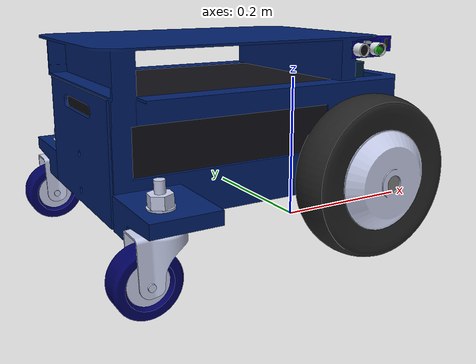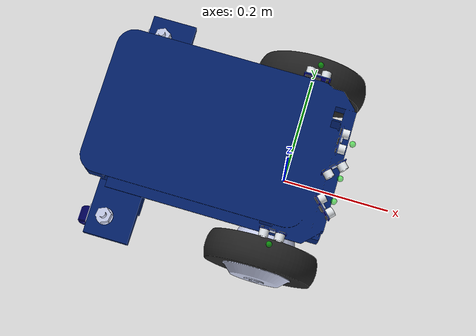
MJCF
<mujoco model="magni">
    <compiler angle="radian" meshdir="./assets" />
    <option timestep="0.002" integrator="implicitfast" />

    <default>
        <default class="visual">
            <geom type="mesh" contype="0" conaffinity="0" group="2" density="0" />
        </default>
        <default class="collision">
            <geom group="3" />
        </default>
        <default class="wheel">
            <joint type="hinge" axis="1 0 0" damping="0.1"
                armature="0.005" frictionloss="0.05" />
        </default>
    </default>

    <asset>
        <material name="chassis_light"    rgba="0.7922 0.8196 0.9333 1.0000" />
        <material name="accent_navy"      rgba="0.0000 0.0000 0.3765 1.0000" />
        <material name="hubcap_dark"      rgba="0.1373 0.1373 0.1373 1.0000" />
        <material name="axlecap_grey"     rgba="0.5020 0.5020 0.5020 1.0000" />
        <material name="body_black"       rgba="0.0588 0.0588 0.0863 1.0000" />
        <material name="body_blue"        rgba="0.0039 0.1216 0.4196 1.0000" />
        <material name="body_blue_dark"   rgba="0.0039 0.1294 0.2275 1.0000" />
        <material name="sonar_pcb"        rgba="0.0000 0.0000 0.5020 1.0000" />
        <material name="sonar_housing"    rgba="0.6667 0.6980 0.7686 1.0000" />
        <material name="sonar_led"        rgba="0.1373 0.2941 0.7490 1.0000" />
        <material name="sonar_chip"       rgba="0.0706 0.0706 0.0706 1.0000" />
        <material name="sonar_transducer" rgba="0.8941 0.9137 0.9294 1.0000" />

        <mesh name="caster_wheel__0" file="parts/caster_wheel__0.stl" inertia="shell" />
        <mesh name="caster_wheel__1" file="parts/caster_wheel__1.stl" inertia="shell" />
        <mesh name="caster_wheel__2" file="parts/caster_wheel__2.stl" inertia="shell" />
        <mesh name="caster_wheel__3" file="parts/caster_wheel__3.stl" inertia="shell" />
        <mesh name="caster_wheel__4" file="parts/caster_wheel__4.stl" inertia="shell" />
        <mesh name="caster_wheel__5" file="parts/caster_wheel__5.stl" inertia="shell" />
        <mesh name="front_wheel__0" file="parts/front_wheel__0.stl" inertia="shell" />
        <mesh name="front_wheel__1" file="parts/front_wheel__1.stl" inertia="shell" />
        <mesh name="front_wheel__2" file="parts/front_wheel__2.stl" inertia="shell" />
        <mesh name="magni_body__0" file="parts/magni_body__0.stl" inertia="shell" />
        <mesh name="magni_body__1" file="parts/magni_body__1.stl" inertia="shell" />
        <mesh name="magni_body__2" file="parts/magni_body__2.stl" inertia="shell" />
        <mesh name="magni_body__3" file="parts/magni_body__3.stl" inertia="shell" />
        <mesh name="magni_body__4" file="parts/magni_body__4.stl" inertia="shell" />
        <mesh name="sonar_hc-sr04__0" file="parts/sonar_hc-sr04__0.stl" inertia="shell" />
        <mesh name="sonar_hc-sr04__1" file="parts/sonar_hc-sr04__1.stl" inertia="shell" />
        <mesh name="sonar_hc-sr04__2" file="parts/sonar_hc-sr04__2.stl" inertia="shell" />
        <mesh name="sonar_hc-sr04__3" file="parts/sonar_hc-sr04__3.stl" inertia="shell" />
        <mesh name="sonar_hc-sr04__4" file="parts/sonar_hc-sr04__4.stl" inertia="shell" />
    </asset>

    <worldbody>
        <body name="base" pos="0 0 0.1">
            <freejoint />
            <inertial pos="-0.15 0 0.03" quat="0 0.707107 0 0.707107" mass="10"
                diaginertia="0.172704 0.150753 0.0594508" />
            <site name="imu" pos="0 0 0" size="0.01" rgba="1 0 0 0.5" />
            <body name="body" pos="-0.11 0 -0.029" quat="1 0 0 0">
                <inertial pos="-0.03 0 0.11" mass="1.0"
                    diaginertia="0.02 0.025 0.03" />
                <geom class="collision" type="box" pos="-0.03 0 0.11"
                    size="0.2 0.11 0.05" />
                <geom class="visual" mesh="magni_body__0" material="body_black" />
                <geom class="visual" mesh="magni_body__1" material="body_blue" />
                <geom class="visual" mesh="magni_body__2" material="body_blue" />
                <geom class="visual" mesh="magni_body__3" material="body_blue_dark" />
                <geom class="visual" mesh="magni_body__4" material="body_blue" />
            </body>
            <body name="left_caster_yoke" pos="-0.279 0.17 -0.01" quat="0 0 0 1">
                <inertial pos="0 0 -0.025" mass="0.15"
                    diaginertia="1e-4 1e-4 1e-4" />
                <joint name="left_caster_swivel" type="hinge" axis="0 0 1"
                    damping="0.005" />
                <geom class="visual" mesh="caster_wheel__0" material="chassis_light" />
                <geom class="visual" mesh="caster_wheel__1" material="chassis_light" />
                <geom class="visual" mesh="caster_wheel__2" material="chassis_light" />
                <geom class="visual" mesh="caster_wheel__3" material="chassis_light" />
                <geom class="visual" mesh="caster_wheel__4" material="accent_navy" />
                <geom class="visual" mesh="caster_wheel__5" material="chassis_light" />
                <body name="left_caster_wheel" pos="0.025 0 -0.05">
                    <inertial pos="0 0 0" mass="0.05"
                        diaginertia="3e-5 3e-5 3e-5" />
                    <joint name="left_caster_roll" type="hinge" axis="0 1 0"
                        damping="0.001" />
                    <geom class="collision" type="sphere" size="0.04"
                        friction="1 0.005 0.0001" />
                </body>
            </body>
            <body name="right_caster_yoke" pos="-0.279 -0.17 -0.01" quat="0 0 0 1">
                <inertial pos="0 0 -0.025" mass="0.15"
                    diaginertia="1e-4 1e-4 1e-4" />
                <joint name="right_caster_swivel" type="hinge" axis="0 0 1"
                    damping="0.005" />
                <geom class="visual" mesh="caster_wheel__0" material="chassis_light" />
                <geom class="visual" mesh="caster_wheel__1" material="chassis_light" />
                <geom class="visual" mesh="caster_wheel__2" material="chassis_light" />
                <geom class="visual" mesh="caster_wheel__3" material="chassis_light" />
                <geom class="visual" mesh="caster_wheel__4" material="accent_navy" />
                <geom class="visual" mesh="caster_wheel__5" material="chassis_light" />
                <body name="right_caster_wheel" pos="0.025 0 -0.05">
                    <inertial pos="0 0 0" mass="0.05"
                        diaginertia="3e-5 3e-5 3e-5" />
                    <joint name="right_caster_roll" type="hinge" axis="0 1 0"
                        damping="0.001" />
                    <geom class="collision" type="sphere" size="0.04"
                        friction="1 0.005 0.0001" />
                </body>
            </body>
            <body name="left_front_wheel" pos="0 0.163 0" quat="0.707107 0 0 0.707107">
                <inertial pos="0 0 0" quat="0.5 0.5 -0.5 0.5" mass="3.34"
                    diaginertia="0.0167 0.00904583 0.00904583" />
                <joint class="wheel" name="left_wheel_joint" />
                <geom class="collision" type="cylinder" size="0.1"
                    fromto="-0.025 0 0 0.025 0 0" />
                <geom class="visual" pos="-0.071 0 0" mesh="front_wheel__0"
                    material="chassis_light" />
                <geom class="visual" pos="-0.071 0 0" mesh="front_wheel__1"
                    material="hubcap_dark" />
                <geom class="visual" pos="-0.071 0 0" mesh="front_wheel__2"
                    material="axlecap_grey" />
            </body>
            <body name="right_front_wheel" pos="0 -0.163 0" quat="0.707107 0 0 0.707107">
                <inertial pos="0 0 0" quat="0.5 0.5 -0.5 0.5" mass="3.34"
                    diaginertia="0.0167 0.00904583 0.00904583" />
                <joint class="wheel" name="right_wheel_joint" />
                <geom class="collision" type="cylinder" size="0.1"
                    fromto="-0.025 0 0 0.025 0 0" />
                <geom class="visual" pos="0.071 0 0" quat="0 0 -1 0" mesh="front_wheel__0"
                    material="chassis_light" />
                <geom class="visual" pos="0.071 0 0" quat="0 0 -1 0" mesh="front_wheel__1"
                    material="hubcap_dark" />
                <geom class="visual" pos="0.071 0 0" quat="0 0 -1 0" mesh="front_wheel__2"
                    material="axlecap_grey" />
            </body>
            <body name="sonar_0" pos="0.01 -0.14 0.15" quat="0.707107 0 0 -0.707107">
                <inertial pos="0 0 0" mass="0.01"
                    diaginertia="1e-6 2e-6 2e-6" />
                <site name="sonar_0_site" pos="0.015 0 0" zaxis="1 0 0"
                    size="0.005" rgba="0 1 0 0.5" />
                <geom class="visual" pos="-0.006 0 0" quat="0.5 0.5 0.5 0.5" mesh="sonar_hc-sr04__0"
                    material="sonar_pcb" />
                <geom class="visual" pos="-0.006 0 0" quat="0.5 0.5 0.5 0.5" mesh="sonar_hc-sr04__1"
                    material="sonar_housing" />
                <geom class="visual" pos="-0.006 0 0" quat="0.5 0.5 0.5 0.5" mesh="sonar_hc-sr04__2"
                    material="sonar_led" />
                <geom class="visual" pos="-0.006 0 0" quat="0.5 0.5 0.5 0.5" mesh="sonar_hc-sr04__3"
                    material="sonar_chip" />
                <geom class="visual" pos="-0.006 0 0" quat="0.5 0.5 0.5 0.5" mesh="sonar_hc-sr04__4"
                    material="sonar_transducer" />
            </body>
            <body name="sonar_1" pos="0.08 -0.07 0.15" quat="0.923956 0 0 0.382499">
                <inertial pos="0 0 0" mass="0.01"
                    diaginertia="1e-6 2e-6 2e-6" />
                <site name="sonar_1_site" pos="0.015 0 0" zaxis="1 0 0"
                    size="0.005" rgba="0 1 0 0.5" />
                <geom class="visual" pos="-0.006 0 0" quat="0.5 0.5 0.5 0.5" mesh="sonar_hc-sr04__0"
                    material="sonar_pcb" />
                <geom class="visual" pos="-0.006 0 0" quat="0.5 0.5 0.5 0.5" mesh="sonar_hc-sr04__1"
                    material="sonar_housing" />
                <geom class="visual" pos="-0.006 0 0" quat="0.5 0.5 0.5 0.5" mesh="sonar_hc-sr04__2"
                    material="sonar_led" />
                <geom class="visual" pos="-0.006 0 0" quat="0.5 0.5 0.5 0.5" mesh="sonar_hc-sr04__3"
                    material="sonar_chip" />
                <geom class="visual" pos="-0.006 0 0" quat="0.5 0.5 0.5 0.5" mesh="sonar_hc-sr04__4"
                    material="sonar_transducer" />
            </body>
            <body name="sonar_2" pos="0.08 -0.01 0.15" quat="0.923956 0 0 -0.382499">
                <inertial pos="0 0 0" mass="0.01"
                    diaginertia="1e-6 2e-6 2e-6" />
                <site name="sonar_2_site" pos="0.015 0 0" zaxis="1 0 0"
                    size="0.005" rgba="0 1 0 0.5" />
                <geom class="visual" pos="-0.006 0 0" quat="0.5 0.5 0.5 0.5" mesh="sonar_hc-sr04__0"
                    material="sonar_pcb" />
                <geom class="visual" pos="-0.006 0 0" quat="0.5 0.5 0.5 0.5" mesh="sonar_hc-sr04__1"
                    material="sonar_housing" />
                <geom class="visual" pos="-0.006 0 0" quat="0.5 0.5 0.5 0.5" mesh="sonar_hc-sr04__2"
                    material="sonar_led" />
                <geom class="visual" pos="-0.006 0 0" quat="0.5 0.5 0.5 0.5" mesh="sonar_hc-sr04__3"
                    material="sonar_chip" />
                <geom class="visual" pos="-0.006 0 0" quat="0.5 0.5 0.5 0.5" mesh="sonar_hc-sr04__4"
                    material="sonar_transducer" />
            </body>
            <body name="sonar_3" pos="0.08 0.04 0.15">
                <inertial pos="0 0 0" mass="0.01"
                    diaginertia="1e-6 2e-6 2e-6" />
                <site name="sonar_3_site" pos="0.015 0 0" zaxis="1 0 0"
                    size="0.005" rgba="0 1 0 0.5" />
                <geom class="visual" pos="-0.006 0 0" quat="0.5 0.5 0.5 0.5" mesh="sonar_hc-sr04__0"
                    material="sonar_pcb" />
                <geom class="visual" pos="-0.006 0 0" quat="0.5 0.5 0.5 0.5" mesh="sonar_hc-sr04__1"
                    material="sonar_housing" />
                <geom class="visual" pos="-0.006 0 0" quat="0.5 0.5 0.5 0.5" mesh="sonar_hc-sr04__2"
                    material="sonar_led" />
                <geom class="visual" pos="-0.006 0 0" quat="0.5 0.5 0.5 0.5" mesh="sonar_hc-sr04__3"
                    material="sonar_chip" />
                <geom class="visual" pos="-0.006 0 0" quat="0.5 0.5 0.5 0.5" mesh="sonar_hc-sr04__4"
                    material="sonar_transducer" />
            </body>
            <body name="sonar_4" pos="0.01 0.14 0.15" quat="0.707107 0 0 0.707107">
                <inertial pos="0 0 0" mass="0.01"
                    diaginertia="1e-6 2e-6 2e-6" />
                <site name="sonar_4_site" pos="0.015 0 0" zaxis="1 0 0"
                    size="0.005" rgba="0 1 0 0.5" />
                <geom class="visual" pos="-0.006 0 0" quat="0.5 0.5 0.5 0.5" mesh="sonar_hc-sr04__0"
                    material="sonar_pcb" />
                <geom class="visual" pos="-0.006 0 0" quat="0.5 0.5 0.5 0.5" mesh="sonar_hc-sr04__1"
                    material="sonar_housing" />
                <geom class="visual" pos="-0.006 0 0" quat="0.5 0.5 0.5 0.5" mesh="sonar_hc-sr04__2"
                    material="sonar_led" />
                <geom class="visual" pos="-0.006 0 0" quat="0.5 0.5 0.5 0.5" mesh="sonar_hc-sr04__3"
                    material="sonar_chip" />
                <geom class="visual" pos="-0.006 0 0" quat="0.5 0.5 0.5 0.5" mesh="sonar_hc-sr04__4"
                    material="sonar_transducer" />
            </body>
        </body>
    </worldbody>

    <contact>
        <exclude body1="body" body2="left_front_wheel" />
        <exclude body1="body" body2="right_front_wheel" />
        <exclude body1="body" body2="left_caster_yoke" />
        <exclude body1="body" body2="right_caster_yoke" />
        <exclude body1="body" body2="left_caster_wheel" />
        <exclude body1="body" body2="right_caster_wheel" />
    </contact>

    <actuator>
        <velocity name="left_wheel"  joint="left_wheel_joint"  kv="10" ctrlrange="-10 10" />
        <velocity name="right_wheel" joint="right_wheel_joint" kv="10" ctrlrange="-10 10" />
    </actuator>

    <keyframe>
        <key name="home"
            qpos="0 0 0.0998  1 0 0 0  0 0  0 0  0 0" />
    </keyframe>

    <sensor>
        <gyro          name="imu_gyro"        site="imu" />
        <accelerometer name="imu_acc"         site="imu" />
        <framepos      name="base_pos"        objtype="site" objname="imu" />
        <framequat     name="base_quat"       objtype="site" objname="imu" />
        <jointpos      name="left_wheel_pos"  joint="left_wheel_joint" />
        <jointpos      name="right_wheel_pos" joint="right_wheel_joint" />
        <jointvel      name="left_wheel_vel"  joint="left_wheel_joint" />
        <jointvel      name="right_wheel_vel" joint="right_wheel_joint" />
        <rangefinder   name="sonar_0" site="sonar_0_site" cutoff="4" />
        <rangefinder   name="sonar_1" site="sonar_1_site" cutoff="4" />
        <rangefinder   name="sonar_2" site="sonar_2_site" cutoff="4" />
        <rangefinder   name="sonar_3" site="sonar_3_site" cutoff="4" />
        <rangefinder   name="sonar_4" site="sonar_4_site" cutoff="4" />
    </sensor>
</mujoco>
